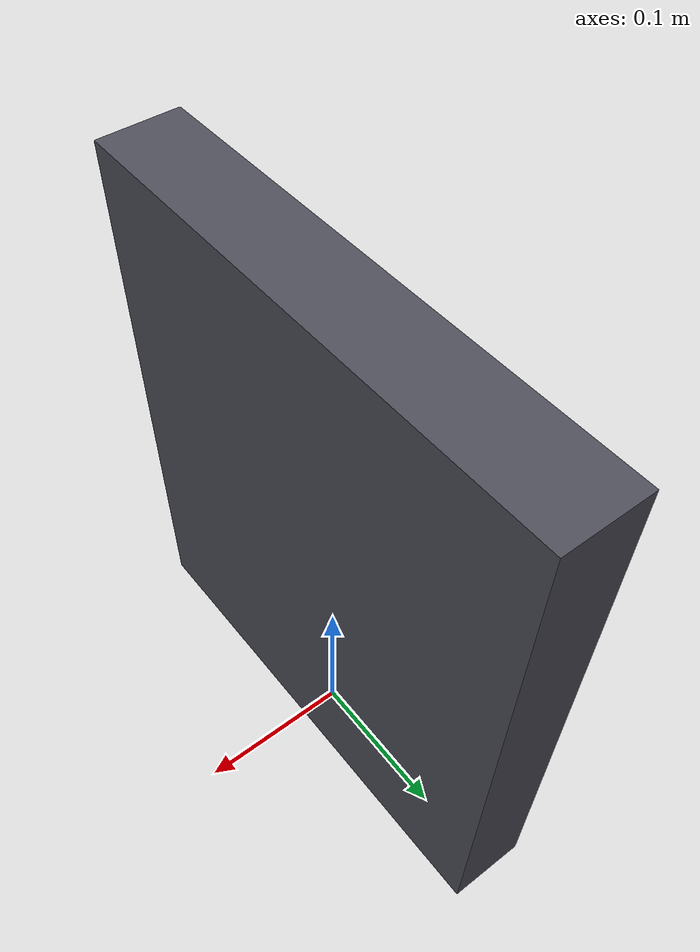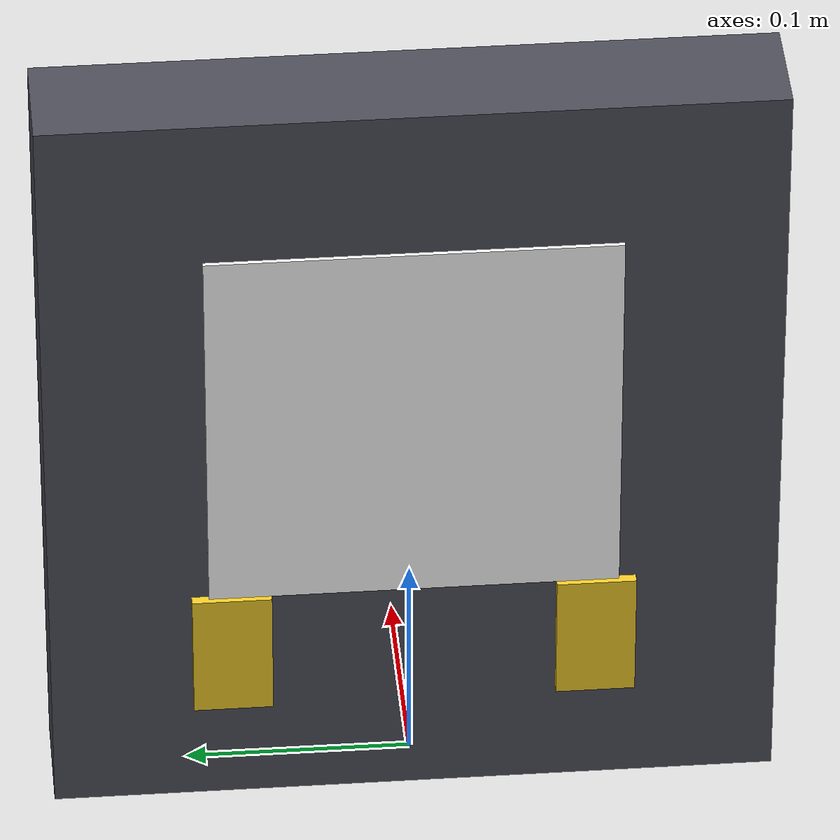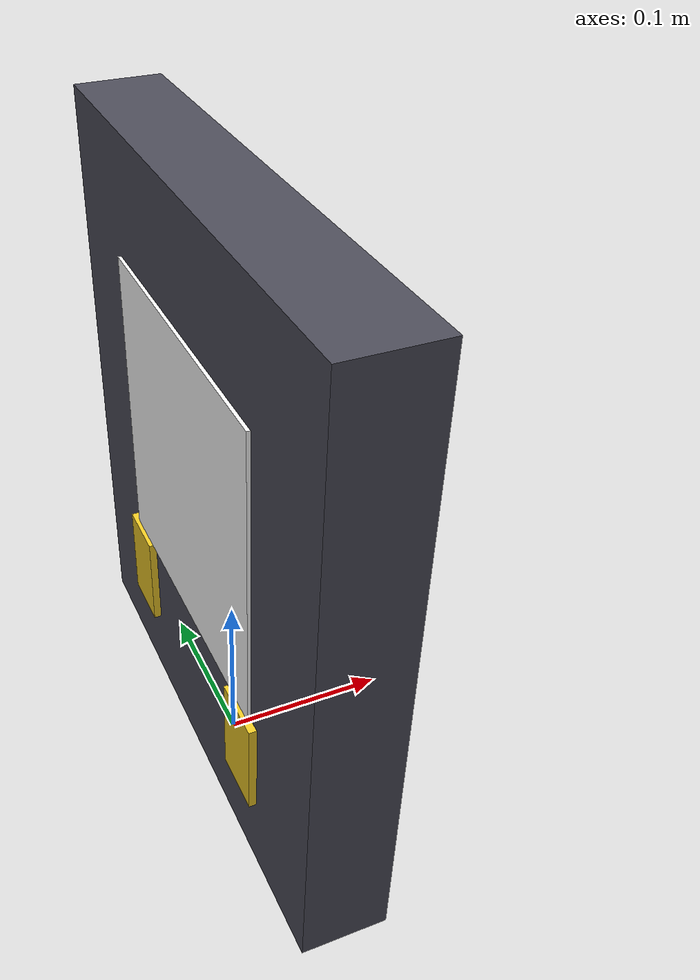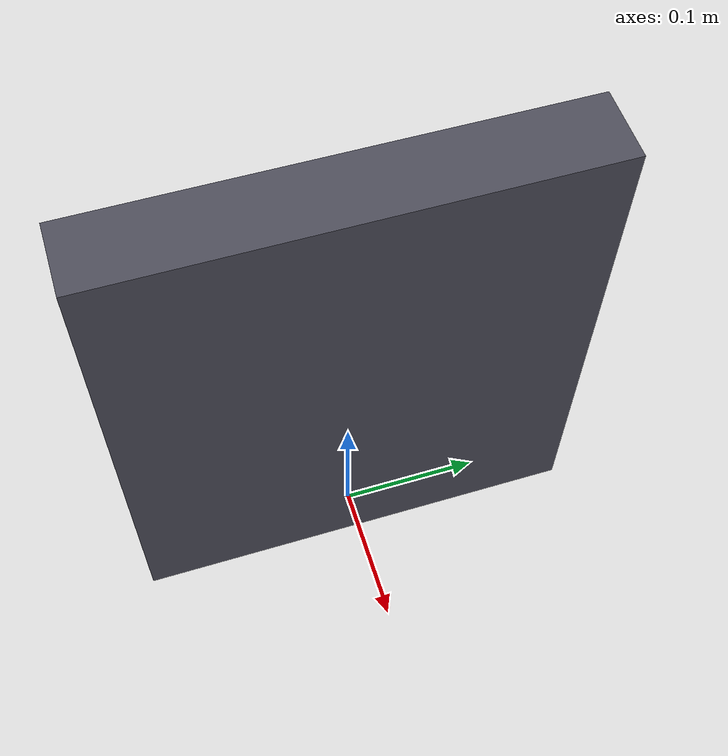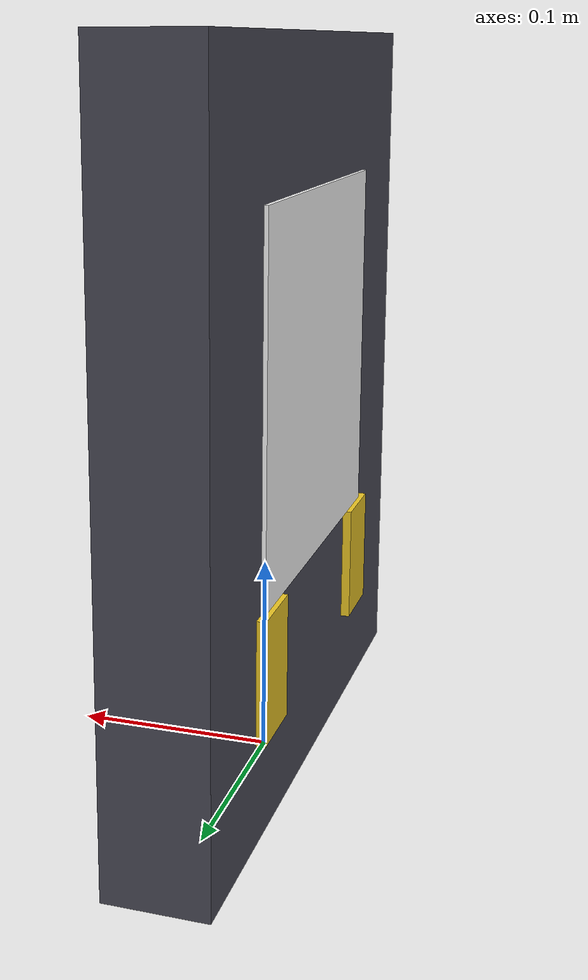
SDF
<?xml version="1.0" ?>
<sdf version="1.6">
  <model name="charging_dock">
    <static>true</static>
    <link name="dock_link">
      <!-- Vertical Upright Wall Post (No raised step on the ground) -->
      <visual name="upright_visual">
        <pose>0 0 0.18 0 0 0</pose>
        <geometry>
          <box>
            <size>0.05 0.32 0.36</size>
          </box>
        </geometry>
        <material>
          <ambient>0.2 0.2 0.25 1</ambient>
          <diffuse>0.3 0.3 0.35 1</diffuse>
          <specular>0.2 0.2 0.2 1</specular>
        </material>
      </visual>
      <collision name="upright_collision">
        <pose>0 0 0.18 0 0 0</pose>
        <geometry>
          <box>
            <size>0.05 0.32 0.36</size>
          </box>
        </geometry>
      </collision>

      <!-- AprilTag Target Plate (Mounted on Front Face at camera height 0.20m, facing West/-X) -->
      <visual name="apriltag_visual">
        <pose>-0.026 0 0.20 0 0 3.14159</pose>
        <geometry>
          <box>
            <size>0.002 0.18 0.18</size>
          </box>
        </geometry>
        <material>
          <diffuse>1.0 1.0 1.0 1.0</diffuse>
          <pbr>
            <metal>
              <albedo_map>model://charging_dock/materials/textures/tag36_11_00000.png</albedo_map>
              <roughness>0.1</roughness>
              <metalness>0.0</metalness>
            </metal>
          </pbr>
        </material>
      </visual>

      <!-- Left Charging Contact Pad (Gold/Yellow metallic) -->
      <visual name="contact_left">
        <pose>-0.027 0.08 0.08 0 0 0</pose>
        <geometry>
          <box>
            <size>0.005 0.035 0.06</size>
          </box>
        </geometry>
        <material>
          <ambient>0.9 0.75 0.1 1</ambient>
          <diffuse>0.95 0.8 0.15 1</diffuse>
          <specular>0.5 0.5 0.2 1</specular>
        </material>
      </visual>

      <!-- Right Charging Contact Pad (Gold/Yellow metallic) -->
      <visual name="contact_right">
        <pose>-0.027 -0.08 0.08 0 0 0</pose>
        <geometry>
          <box>
            <size>0.005 0.035 0.06</size>
          </box>
        </geometry>
        <material>
          <ambient>0.9 0.75 0.1 1</ambient>
          <diffuse>0.95 0.8 0.15 1</diffuse>
          <specular>0.5 0.5 0.2 1</specular>
        </material>
      </visual>
    </link>
  </model>
</sdf>
